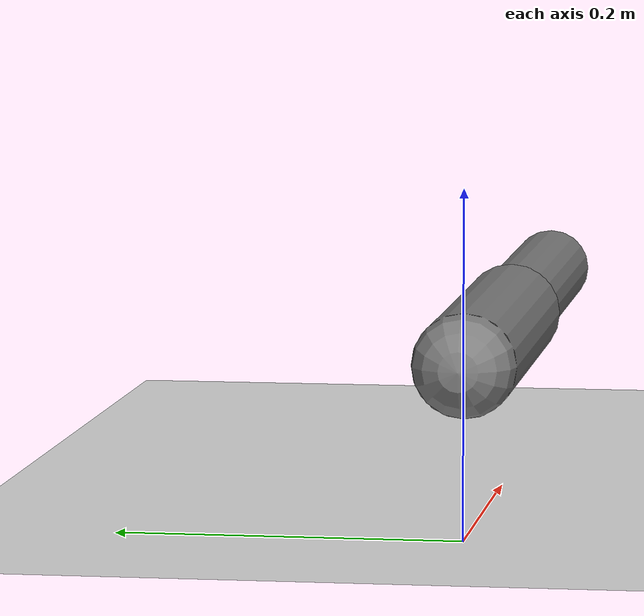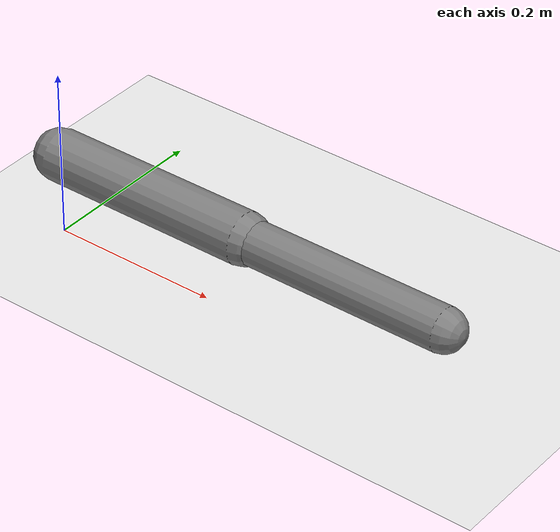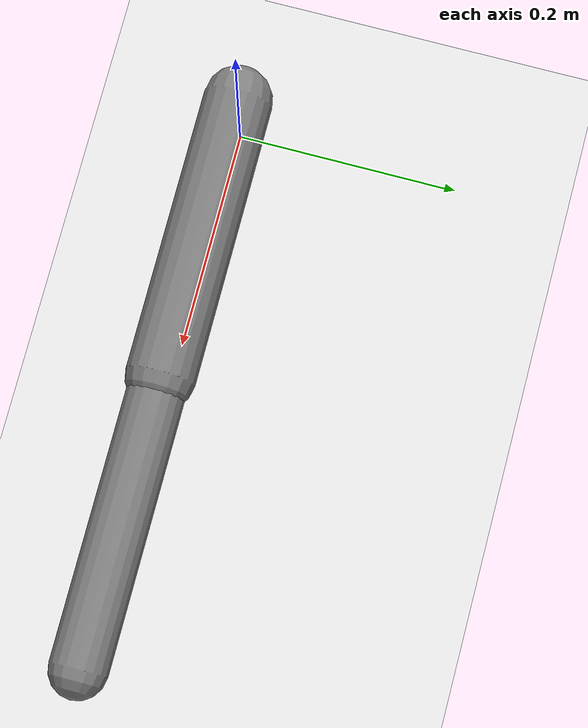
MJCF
<mujoco model="simple_arm">
  <compiler angle="degree" coordinate="local"/>
  <option timestep="0.01" gravity="0 0 -9.81"/>
  <worldbody>
    <body name="base" pos="0 0 0">
      <geom type="plane" size="1 1 0.1" rgba="0.9 0.9 0.9 1"/>
      <body name="link1" pos="0 0 0.1">
        <joint name="j1" type="hinge" axis="0 0 1" range="-90 90" damping="1.0"/>
        <geom type="capsule" fromto="0 0 0 0.25 0 0" size="0.03"/>
        <body name="link2" pos="0.25 0 0">
          <joint name="j2" type="hinge" axis="0 0 1" range="-90 90" damping="1.0"/>
          <geom type="capsule" fromto="0 0 0 0.25 0 0" size="0.025"/>
        </body>
      </body>
    </body>
  </worldbody>
  <actuator>
    <position name="a1" joint="j1" kp="20"/>
    <position name="a2" joint="j2" kp="20"/>
  </actuator>
</mujoco>
